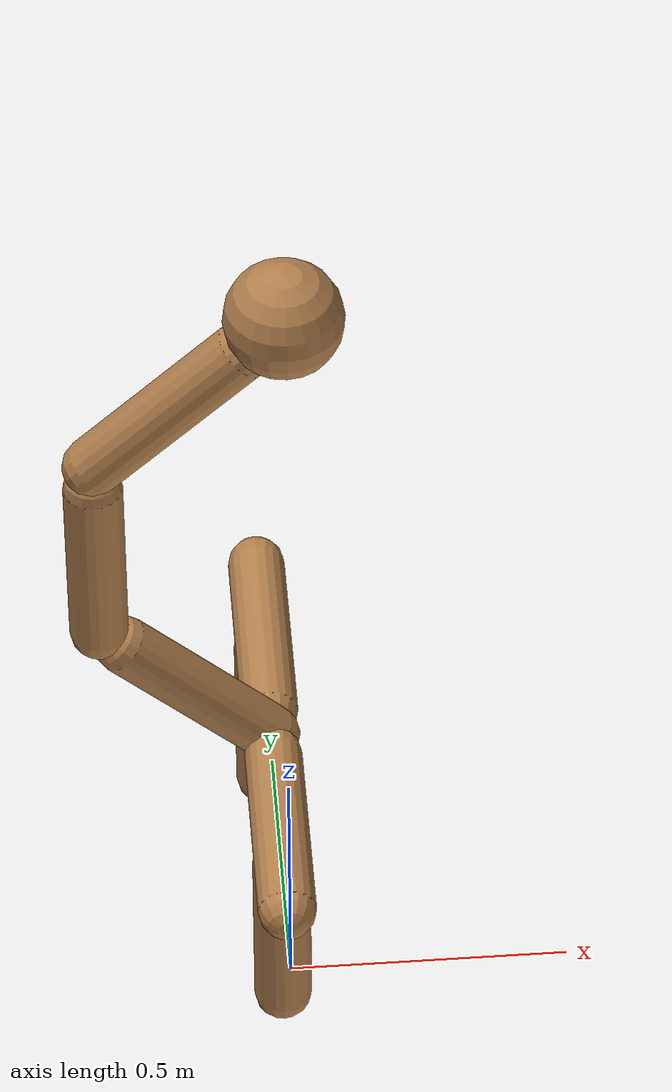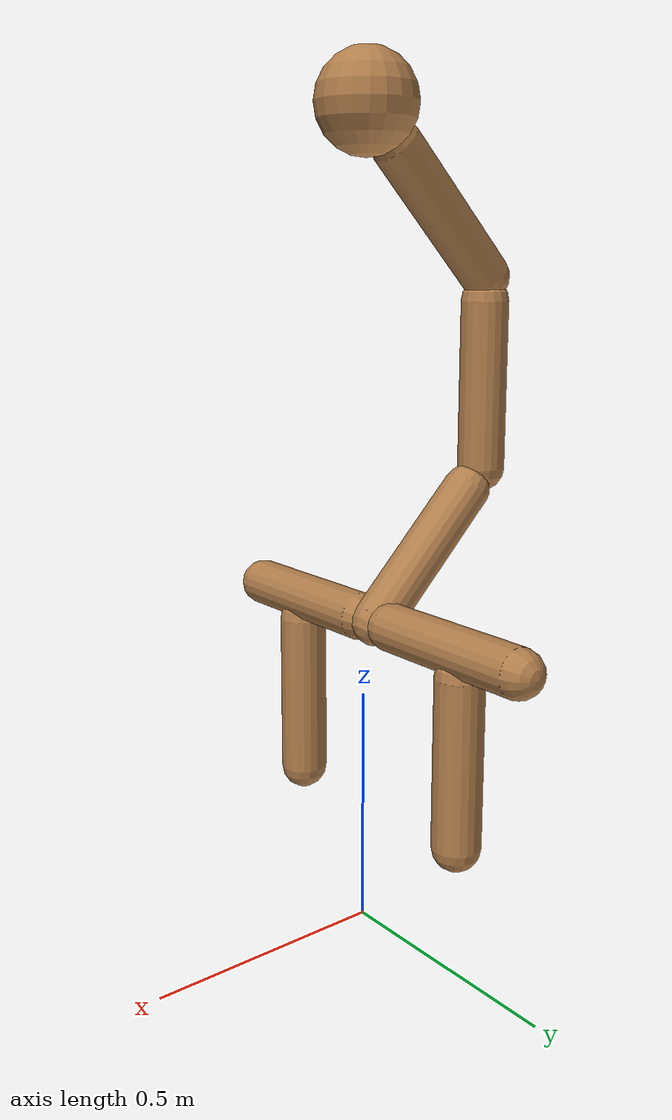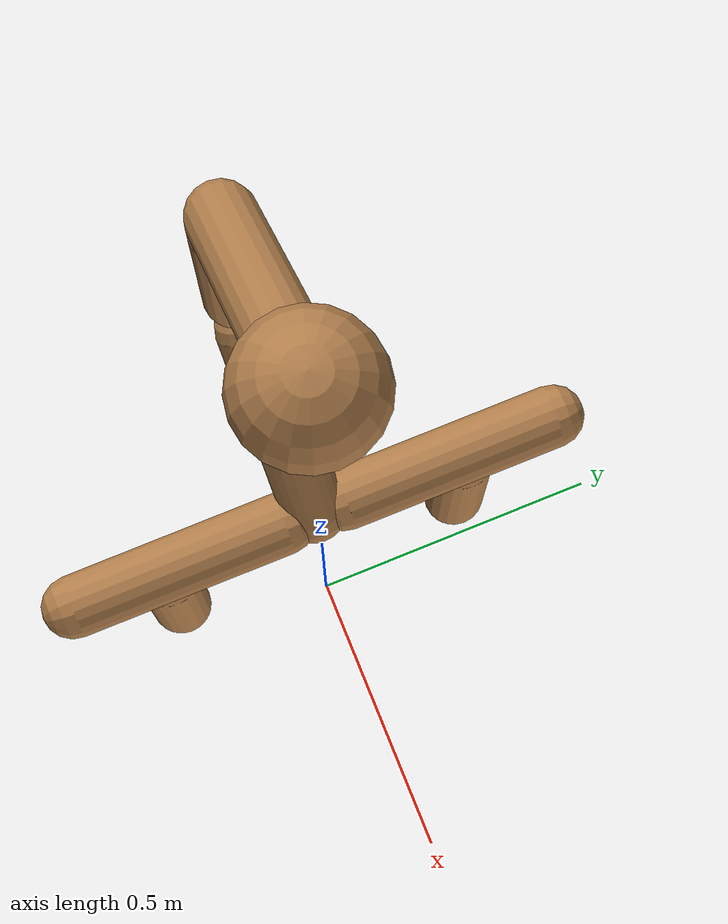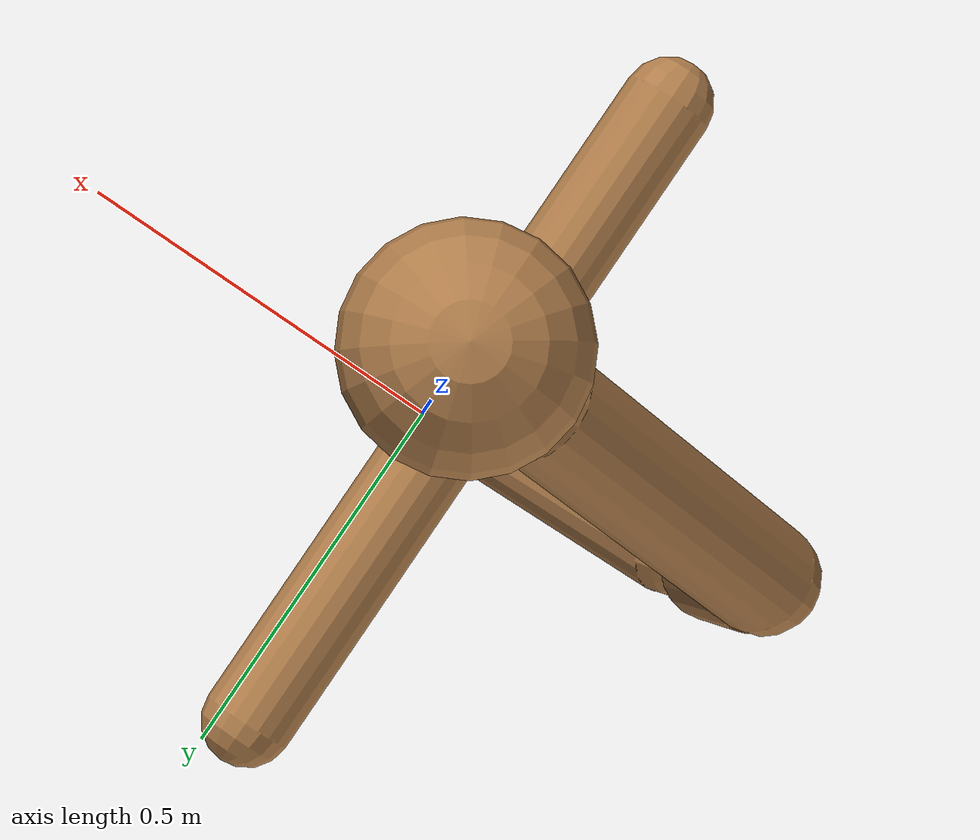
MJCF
<?xml version='1.0' encoding='UTF-8'?>
<!-- Universal Animal Template: unimal -->
<mujoco model="unimal">
  <compiler angle="degree"/>
  <size njmax="2000" nconmax="500"/>
  <option timestep=".005">
    <flag filterparent="disable"/>
  </option>
  <!-- Common defaults to make search space tractable -->
  <default>
    <!-- Define motor defaults -->
    <motor ctrlrange="-1 1" ctrllimited="true"/>
    <!-- Define joint defaults -->
    <default class="normal_joint">
      <joint type="hinge" damping="1" stiffness="1" armature="1" limited="true" range="-120 120" solimplimit="0 0.99 0.01"/>
    </default>
    <default class="walker_joint">
      <joint type="hinge" damping="0.2" stiffness="1" armature=".01" limited="true" range="-120 120" solimplimit="0 0.99 0.01"/>
    </default>
    <default class="stiff_joint">
      <joint type="hinge" damping="5" stiffness="10" armature=".01" limited="true" solimplimit="0 0.99 0.01"/>
    </default>
    <default class="free">
      <joint limited="false" damping="0" armature="0" stiffness="0"/>
    </default>
    <default class="growth_site">
      <site size="1e-6 1e-6 1e-6"/>
    </default>
    <default class="torso_growth_site">
      <site size="1e-6 1e-6 1e-6"/>
    </default>
    <default class="mirror_growth_site">
      <site size="1e-6 1e-6 1e-6"/>
    </default>
    <default class="btm_pos_site">
      <site size="1e-6 1e-6 1e-6"/>
    </default>
    <default class="box_face_site">
      <site size="1e-6 1e-6 1e-6"/>
    </default>
    <default class="imu_vel">
      <site type="box" size="0.05" rgba="1 0 0 0"/>
    </default>
    <default class="touch_site">
      <site group="3" rgba="0 0 1 .3"/>
    </default>
    <default class="food_site">
      <site material="food" size="0.15"/>
    </default>
    <!-- Define geom defaults -->
    <geom type="capsule" condim="3" friction="0.7 0.1 0.1" material="self"/>
  </default>
  <worldbody>
    <light diffuse="1 1 1" directional="true" exponent="1" pos="0 0 8" specular="0.1 0.1 0.1" dir="0 0 -1"/>
    <!-- Programatically generated xml goes here -->
    <body name="torso/0" pos="0 0 1.66">
      <joint name="root" type="free" class="free"/>
      <site name="root" class="imu_vel"/>
      <geom name="torso/0" type="sphere" size="0.1" condim="3" density="500"/>
      <camera name="side" pos="0 -7 2" xyaxes="1 0 0 0 1 2" mode="trackcom"/>
      <site name="torso/0" class="growth_site" pos="0 0 0"/>
      <site name="torso/btm_pos/0" class="btm_pos_site" pos="0 0 -0.1"/>
      <site name="torso/touch/0" class="touch_site" size="0.11"/>
      <site name="torso/horizontal_y/0" class="torso_growth_site" pos="-0.1 0 0"/>
      <body name="limb/23" pos="-0.07 0.0 -0.07">
        <joint name="limbx/23" type="hinge" class="normal_joint" range="-90 0" pos="0.04 0.0 0.04" axis="0.7071 0.0 -0.7071"/>
        <geom name="limb/23" type="capsule" fromto="0.0 0.0 0.0 -0.25 0.0 -0.25" size="0.05" density="700"/>
        <site name="limb/mid/23" class="growth_site" pos="-0.14 0.0 -0.14"/>
        <site name="limb/btm/23" class="growth_site" pos="-0.25 0.0 -0.25"/>
        <site name="limb/btm_pos/23" class="btm_pos_site" pos="-0.25 0.0 -0.25"/>
        <site name="limb/touch/23" class="touch_site" size="0.060000000000000005" fromto="0.0 0.0 0.0 -0.25 0.0 -0.25" type="capsule"/>
        <body name="limb/41" pos="-0.25 0.0 -0.3">
          <joint name="limby/41" type="hinge" class="normal_joint" range="-60 0" pos="0.0 0.0 0.05" axis="0.0 1.0 0.0"/>
          <geom name="limb/41" type="capsule" fromto="0.0 0.0 0.0 0.0 0.0 -0.35" size="0.05" density="700"/>
          <site name="limb/mid/41" class="growth_site" pos="0.0 0.0 -0.2"/>
          <site name="limb/btm/41" class="growth_site" pos="0.0 0.0 -0.35"/>
          <site name="limb/btm_pos/41" class="btm_pos_site" pos="0.0 0.0 -0.4"/>
          <site name="limb/touch/41" class="touch_site" size="0.060000000000000005" fromto="0.0 0.0 0.0 0.0 0.0 -0.35" type="capsule"/>
          <body name="limb/44" pos="0.04 0.0 -0.38999999999999996">
            <joint name="limbx/44" type="hinge" class="normal_joint" range="-60 30" pos="-0.04 0.0 0.04" axis="0.7071 0.0 0.7071"/>
            <geom name="limb/44" type="capsule" fromto="0.0 0.0 0.0 0.25 0.0 -0.25" size="0.05" density="700"/>
            <site name="limb/mid/44" class="growth_site" pos="0.14 0.0 -0.14"/>
            <site name="limb/btm/44" class="growth_site" pos="0.25 0.0 -0.25"/>
            <site name="limb/btm_pos/44" class="btm_pos_site" pos="0.28 0.0 -0.28"/>
            <site name="limb/touch/44" class="touch_site" size="0.060000000000000005" fromto="0.0 0.0 0.0 0.25 0.0 -0.25" type="capsule"/>
            <body name="limb/45" pos="0.25 0.05 -0.25">
              <joint name="limbx/45" type="hinge" class="normal_joint" range="-90 0" pos="0.0 -0.05 0.0" axis="1.0 0.0 0.0"/>
              <geom name="limb/45" type="capsule" fromto="0.0 0.0 0.0 0.0 0.35 0.0" size="0.05" density="700"/>
              <site name="limb/mid/45" class="mirror_growth_site" pos="0.0 0.2 0.0"/>
              <site name="limb/btm/45" class="mirror_growth_site" pos="0.0 0.35 0.0"/>
              <site name="limb/btm_pos/45" class="btm_pos_site" pos="0.0 0.4 0.0"/>
              <site name="limb/touch/45" class="touch_site" size="0.060000000000000005" fromto="0.0 0.0 0.0 0.0 0.35 0.0" type="capsule"/>
              <body name="limb/47" pos="0.0 0.2 -0.05">
                <joint name="limby/47" type="hinge" class="normal_joint" range="0 30" pos="0.0 0.0 0.05" axis="0.0 1.0 0.0"/>
                <geom name="limb/47" type="capsule" fromto="0.0 0.0 0.0 0.0 0.0 -0.35" size="0.05" density="700"/>
                <site name="limb/mid/47" class="mirror_growth_site" pos="0.0 0.0 -0.2"/>
                <site name="limb/btm/47" class="mirror_growth_site" pos="0.0 0.0 -0.35"/>
                <site name="limb/btm_pos/47" class="btm_pos_site" pos="0.0 0.0 -0.4"/>
                <site name="limb/touch/47" class="touch_site" size="0.060000000000000005" fromto="0.0 0.0 0.0 0.0 0.0 -0.35" type="capsule"/>
              </body>
            </body>
            <body name="limb/46" pos="0.25 -0.05 -0.25">
              <joint name="limbx/46" type="hinge" class="normal_joint" range="-90 0" pos="0.0 0.05 0.0" axis="1.0 0.0 -0.0"/>
              <geom name="limb/46" type="capsule" fromto="0.0 0.0 0.0 0.0 -0.35 0.0" size="0.05" density="700"/>
              <site name="limb/mid/46" class="mirror_growth_site" pos="0.0 -0.2 0.0"/>
              <site name="limb/btm/46" class="mirror_growth_site" pos="0.0 -0.35 0.0"/>
              <site name="limb/btm_pos/46" class="btm_pos_site" pos="0.0 -0.4 0.0"/>
              <site name="limb/touch/46" class="touch_site" size="0.060000000000000005" fromto="0.0 0.0 0.0 0.0 -0.35 0.0" type="capsule"/>
              <body name="limb/48" pos="0.0 -0.2 -0.05">
                <joint name="limby/48" type="hinge" class="normal_joint" range="0 30" pos="0.0 0.0 0.05" axis="0.0 1.0 0.0"/>
                <geom name="limb/48" type="capsule" fromto="0.0 0.0 0.0 0.0 0.0 -0.35" size="0.05" density="700"/>
                <site name="limb/mid/48" class="mirror_growth_site" pos="0.0 0.0 -0.2"/>
                <site name="limb/btm/48" class="mirror_growth_site" pos="0.0 0.0 -0.35"/>
                <site name="limb/btm_pos/48" class="btm_pos_site" pos="0.0 0.0 -0.4"/>
                <site name="limb/touch/48" class="touch_site" size="0.060000000000000005" fromto="0.0 0.0 0.0 0.0 0.0 -0.35" type="capsule"/>
              </body>
            </body>
          </body>
        </body>
      </body>
    </body>
  </worldbody>
  <actuator>
    <motor joint="limbx/23" gear="250" name="limbx/23"/>
    <motor joint="limby/41" gear="150" name="limby/41"/>
    <motor joint="limbx/44" gear="200" name="limbx/44"/>
    <motor joint="limbx/45" gear="300" name="limbx/45"/>
    <motor joint="limby/47" gear="250" name="limby/47"/>
    <motor joint="limbx/46" gear="300" name="limbx/46"/>
    <motor joint="limby/48" gear="250" name="limby/48"/>
  </actuator>
  <sensor>
    <accelerometer name="torso_accel" site="root"/>
    <gyro name="torso_gyro" site="root"/>
    <velocimeter name="torso_vel" site="root"/>
    <subtreeangmom name="unimal_am" body="torso/0"/>
    <touch name="torso/0" site="torso/touch/0"/>
    <touch name="limb/23" site="limb/touch/23"/>
    <touch name="limb/41" site="limb/touch/41"/>
    <touch name="limb/44" site="limb/touch/44"/>
    <touch name="limb/45" site="limb/touch/45"/>
    <touch name="limb/47" site="limb/touch/47"/>
    <touch name="limb/46" site="limb/touch/46"/>
    <touch name="limb/48" site="limb/touch/48"/>
  </sensor>
  <!-- Add hfield assets -->
  <asset/>
  <!-- List of contacts to exclude -->
  <contact>
    <exclude name="limb/45:limb/46" body1="limb/45" body2="limb/46"/>
  </contact>
  <!-- Define material, texture etc -->
  <asset>
    <material name="grid" texture="grid" texrepeat="1 1" texuniform="true" reflectance="0.1"/>
    <material name="hfield" texture="hfield" texrepeat="1 1" texuniform="true" reflectance="0.1"/>
    <material name="wall" texture="wall" texrepeat="1 1" texuniform="true" reflectance=".5"/>
    <material name="platform" texture="platform" texrepeat="1 1" texuniform="true" reflectance=".5"/>
    <material name="boundary" texture="boundary" texrepeat="1 1" texuniform="true" reflectance=".5"/>
    <material name="jump" texture="jump" texrepeat="1 1" texuniform="true" reflectance=".5"/>
    <material name="goal" rgba="1 0 0 1"/>
    <material name="food" rgba="0 0 1 1" emission="1"/>
    <material name="init_position" rgba="0 1 0 0.7"/>
    <material name="self" rgba=".7 .5 .3 1"/>
    <material name="self_invisible" rgba=".7 .5 .3 0"/>
    <material name="self_default" rgba=".7 .5 .3 1"/>
    <material name="self_highlight" rgba="0 .5 .3 1"/>
    <material name="effector" rgba=".7 .4 .2 1"/>
    <material name="effector_default" rgba=".7 .4 .2 1"/>
    <material name="effector_highlight" rgba="0 .5 .3 1"/>
    <material name="decoration" rgba=".3 .5 .7 1"/>
    <material name="eye" rgba="0 .2 1 1"/>
    <material name="target" rgba=".6 .3 .3 1"/>
    <material name="target_default" rgba=".6 .3 .3 1"/>
    <material name="target_highlight" rgba=".6 .3 .3 .4"/>
    <material name="site" rgba=".5 .5 .5 .3"/>
    <material name="ball" texture="ball"/>
  </asset>
  <asset>
    <texture name="grid" type="2d" builtin="checker" rgb1="0.4 0.4 0.4" rgb2="0.4 0.4 0.4" width="300" height="300" mark="edge" markrgb="0.2 0.2 0.2"/>
    <texture name="hfield" type="2d" builtin="checker" rgb1="0.4 0.4 0.4" rgb2="0.4 0.4 0.4" width="300" height="300" mark="edge" markrgb="0.2 0.2 0.2"/>
    <texture name="wall" type="2d" builtin="flat" rgb1="0.9 0.7 0" rgb2="0.9 0.7 0" width="300" height="300"/>
    <texture name="platform" type="2d" builtin="flat" rgb1="0.3 0 0.8" rgb2="0.3 0 0.8" width="300" height="300"/>
    <texture name="boundary" type="2d" builtin="flat" rgb1="0.3 0.3 0.3" rgb2="0.3 0.3 0.3" width="300" height="300"/>
    <texture name="jump" type="2d" builtin="flat" rgb1="0.3 0.3 0.3" rgb2="0.3 0.3 0.3" width="300" height="300"/>
    <texture name="skybox" type="skybox" builtin="gradient" rgb1="1 1 1" rgb2="0.6 0.6 0.6" width="800" height="800"/>
    <texture name="ball" builtin="checker" mark="cross" width="151" height="151" rgb1="0.1 0.1 0.1" rgb2="0.9 0.9 0.9" markrgb="1 1 1"/>
  </asset>
  <visual>
    <headlight ambient="0.6 0.6 0.6" diffuse="0.3 0.3 0.3" specular="0 0 0"/>
    <map znear=".01" shadowclip="0.5"/>
    <quality shadowsize="16384"/>
  </visual>
</mujoco>
